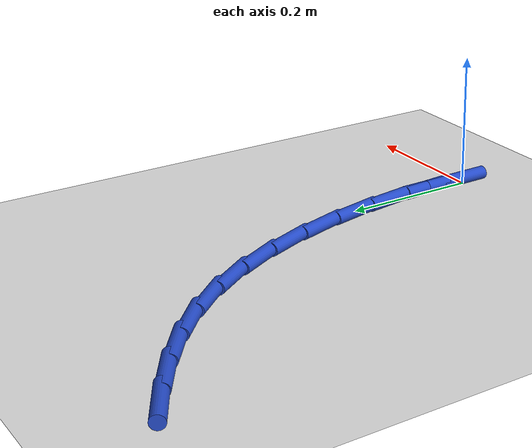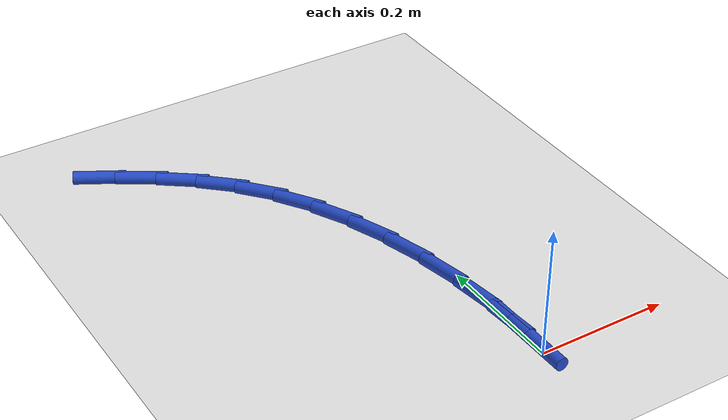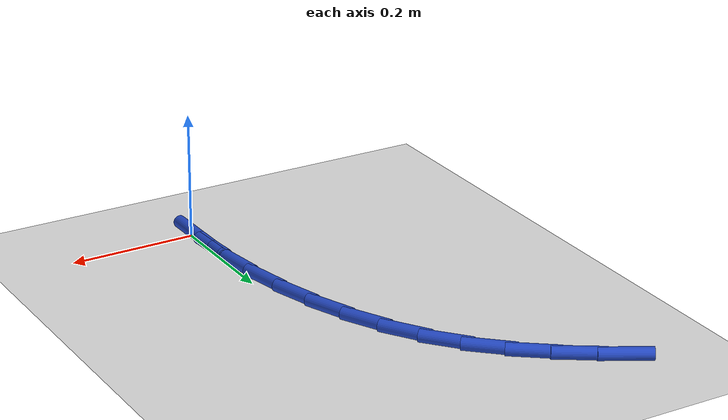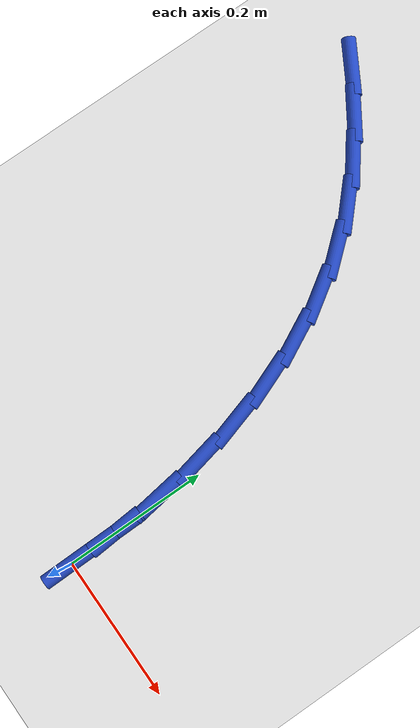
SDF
<sdf version="1.6">
 <world name="default">
  <model name="ground_plane">
   <static>1</static>
   <link name="link">
    <collision name="collision">
     <geometry><plane><normal>0 0 1</normal><size>100 100</size></plane></geometry>
     <surface><friction><ode><mu>100</mu><mu2>50</mu2></ode></friction></surface>
    </collision>
    <visual name="visual">
     <cast_shadows>0</cast_shadows>
     <geometry><plane><normal>0 0 1</normal><size>100 100</size></plane></geometry>
     <material>
      <script><uri>file://media/materials/scripts/gazebo.material</uri><name>Gazebo/WhiteGlow</name></script>
     </material>
    </visual>
   </link>
  </model>
  <model name="line">
   <link name="link_0">
    <pose>-9.367506770274758e-17 -8.326672684688674e-17 0.01 0 1.57 -1.5567892734244453</pose>
    <collision name="collision">
     <geometry><cylinder><radius>0.01</radius><length>0.08</length></cylinder></geometry>
    </collision>
    <visual name="visual">
     <material>
      <script><name>Gazebo/Blue</name><uri>file://media/materials/scripts/gazebo.material</uri></script>
     </material>
     <geometry><cylinder><radius>0.01</radius><length>0.08</length></cylinder></geometry>
    </visual>
   </link>
   <link name="link_1">
    <pose>-0.0009898264234351063 0.0706616632759071 0.01 0 1.57 -1.4955926536195607</pose>
    <collision name="collision">
     <geometry><cylinder><radius>0.01</radius><length>0.08</length></cylinder></geometry>
    </collision>
    <visual name="visual">
     <material>
      <script><name>Gazebo/Blue</name><uri>file://media/materials/scripts/gazebo.material</uri></script>
     </material>
     <geometry><cylinder><radius>0.01</radius><length>0.08</length></cylinder></geometry>
    </visual>
   </link>
   <link name="link_2">
    <pose>-0.006298205357037486 0.1411152407684609 0.01 0 1.57 -1.4304701260696377</pose>
    <collision name="collision">
     <geometry><cylinder><radius>0.01</radius><length>0.08</length></cylinder></geometry>
    </collision>
    <visual name="visual">
     <material>
      <script><name>Gazebo/Blue</name><uri>file://media/materials/scripts/gazebo.material</uri></script>
     </material>
     <geometry><cylinder><radius>0.01</radius><length>0.08</length></cylinder></geometry>
    </visual>
   </link>
   <link name="link_3">
    <pose>-0.016112148642504993 0.21059222804336364 0.01 0 1.57 -1.359808265537759</pose>
    <collision name="collision">
     <geometry><cylinder><radius>0.01</radius><length>0.08</length></cylinder></geometry>
    </collision>
    <visual name="visual">
     <material>
      <script><name>Gazebo/Blue</name><uri>file://media/materials/scripts/gazebo.material</uri></script>
     </material>
     <geometry><cylinder><radius>0.01</radius><length>0.08</length></cylinder></geometry>
    </visual>
   </link>
   <link name="link_4">
    <pose>-0.030618668121535422 0.2783241206663178 0.01 0 1.57 -1.28186479976309</pose>
    <collision name="collision">
     <geometry><cylinder><radius>0.01</radius><length>0.08</length></cylinder></geometry>
    </collision>
    <visual name="visual">
     <material>
      <script><name>Gazebo/Blue</name><uri>file://media/materials/scripts/gazebo.material</uri></script>
     </material>
     <geometry><cylinder><radius>0.01</radius><length>0.08</length></cylinder></geometry>
    </visual>
   </link>
   <link name="link_5">
    <pose>-0.05000477563582653 0.3435424142030259 0.01 0 1.57 -1.1947765460470794</pose>
    <collision name="collision">
     <geometry><cylinder><radius>0.01</radius><length>0.08</length></cylinder></geometry>
    </collision>
    <visual name="visual">
     <material>
      <script><name>Gazebo/Blue</name><uri>file://media/materials/scripts/gazebo.material</uri></script>
     </material>
     <geometry><cylinder><radius>0.01</radius><length>0.08</length></cylinder></geometry>
    </visual>
   </link>
   <link name="link_6">
    <pose>-0.07445748302707608 0.40547860421919013 0.01 0 1.57 -1.0966522475324598</pose>
    <collision name="collision">
     <geometry><cylinder><radius>0.01</radius><length>0.08</length></cylinder></geometry>
    </collision>
    <visual name="visual">
     <material>
      <script><name>Gazebo/Blue</name><uri>file://media/materials/scripts/gazebo.material</uri></script>
     </material>
     <geometry><cylinder><radius>0.01</radius><length>0.08</length></cylinder></geometry>
    </visual>
   </link>
   <link name="link_7">
    <pose>-0.10416380213698187 0.463364186280513 0.01 0 1.57 -0.9858095378803601</pose>
    <collision name="collision">
     <geometry><cylinder><radius>0.01</radius><length>0.08</length></cylinder></geometry>
    </collision>
    <visual name="visual">
     <material>
      <script><name>Gazebo/Blue</name><uri>file://media/materials/scripts/gazebo.material</uri></script>
     </material>
     <geometry><cylinder><radius>0.01</radius><length>0.08</length></cylinder></geometry>
    </visual>
   </link>
   <link name="link_8">
    <pose>-0.13931074480724162 0.5164306559526969 0.01 0 1.57 -0.8619004915106752</pose>
    <collision name="collision">
     <geometry><cylinder><radius>0.01</radius><length>0.08</length></cylinder></geometry>
    </collision>
    <visual name="visual">
     <material>
      <script><name>Gazebo/Blue</name><uri>file://media/materials/scripts/gazebo.material</uri></script>
     </material>
     <geometry><cylinder><radius>0.01</radius><length>0.08</length></cylinder></geometry>
    </visual>
   </link>
   <link name="link_9">
    <pose>-0.1800631988246468 0.5639492561377285 0.01 0 1.57 -0.7412356714607298</pose>
    <collision name="collision">
     <geometry><cylinder><radius>0.01</radius><length>0.08</length></cylinder></geometry>
    </collision>
    <visual name="visual">
     <material>
      <script><name>Gazebo/Blue</name><uri>file://media/materials/scripts/gazebo.material</uri></script>
     </material>
     <geometry><cylinder><radius>0.01</radius><length>0.08</length></cylinder></geometry>
    </visual>
   </link>
   <link name="link_10">
    <pose>-0.22609079795769585 0.6060809865246927 0.01 0 1.57 -0.6424713013550695</pose>
    <collision name="collision">
     <geometry><cylinder><radius>0.01</radius><length>0.08</length></cylinder></geometry>
    </collision>
    <visual name="visual">
     <material>
      <script><name>Gazebo/Blue</name><uri>file://media/materials/scripts/gazebo.material</uri></script>
     </material>
     <geometry><cylinder><radius>0.01</radius><length>0.08</length></cylinder></geometry>
    </visual>
   </link>
   <link name="link_11">
    <pose>-0.27657536130924976 0.6438632382978783 0.01 0 1.57 -0.5677578637865165</pose>
    <collision name="collision">
     <geometry><cylinder><radius>0.01</radius><length>0.08</length></cylinder></geometry>
    </collision>
    <visual name="visual">
     <material>
      <script><name>Gazebo/Blue</name><uri>file://media/materials/scripts/gazebo.material</uri></script>
     </material>
     <geometry><cylinder><radius>0.01</radius><length>0.08</length></cylinder></geometry>
    </visual>
   </link>
   <link name="link_12">
    <pose>-0.3306780719046408 0.6783704767275232 0.01 0 1.57 -0.5165269920208294</pose>
    <collision name="collision">
     <geometry><cylinder><radius>0.01</radius><length>0.08</length></cylinder></geometry>
    </collision>
    <visual name="visual">
     <material>
      <script><name>Gazebo/Blue</name><uri>file://media/materials/scripts/gazebo.material</uri></script>
     </material>
     <geometry><cylinder><radius>0.01</radius><length>0.08</length></cylinder></geometry>
    </visual>
   </link>
   <link name="link_111">
    <pose>-0.0009581777366112591 0.07072763991514038 0.01 0 1.57 -1.5572497257039597</pose>
    <collision name="collision">
     <geometry><cylinder><radius>0.01</radius><length>0.08</length></cylinder></geometry>
    </collision>
    <visual name="visual">
     <material>
      <script><name>Gazebo/Blue</name><uri>file://media/materials/scripts/gazebo.material</uri></script>
     </material>
     <geometry><cylinder><radius>0.01</radius><length>0.08</length></cylinder></geometry>
    </visual>
   </link>
  </model>
 </world>
</sdf>
